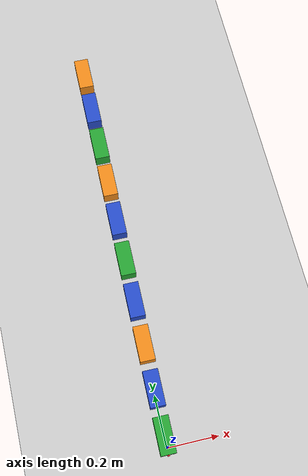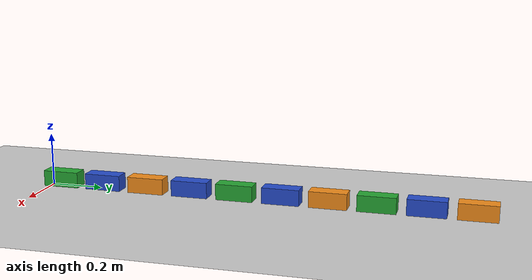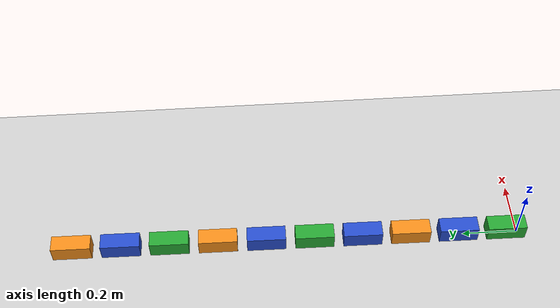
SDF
<sdf version="1.7">
 <world name="default">
  <model name="ground_plane">
   <static>1</static>
   <link name="link">
    <collision name="collision">
     <geometry><plane><normal>0 0 1</normal><size>100 100</size></plane></geometry>
     <surface>
      <contact><collide_bitmask>65535</collide_bitmask></contact>
      <friction><ode><mu>100</mu><mu2>50</mu2></ode></friction>
     </surface>
    </collision>
    <visual name="visual">
     <cast_shadows>0</cast_shadows>
     <geometry><plane><normal>0 0 1</normal><size>100 100</size></plane></geometry>
     <material>
      <script><uri>file://media/materials/scripts/gazebo.material</uri><name>Gazebo/Grey</name></script>
     </material>
    </visual>
   </link>
  </model>
  <model name="my_bot">
   <link name="base_link">
    <inertial>
     <pose>0 0.07 0.03 0 -0 0</pose>
     <mass>1</mass>
     <inertia>
      <ixx>0.00193333</ixx>
      <ixy>0</ixy>
      <ixz>0</ixz>
      <iyy>0.0006</iyy>
      <iyz>0</iyz>
      <izz>0.00193333</izz>
     </inertia>
    </inertial>
    <collision name="base_link_fixed_joint_lump__link_1_collision">
     <pose>0 0.07 0.03 0 -0 0</pose>
     <geometry><box><size>0.06 0.14 0.06</size></box></geometry>
    </collision>
    <visual name="base_link_fixed_joint_lump__link_1_visual">
     <pose>0 0.07 0.03 0 -0 0</pose>
     <geometry><box><size>0.06 0.14 0.06</size></box></geometry>
     <material>
      <script><name>Gazebo/Green</name><uri>file://media/materials/scripts/gazebo.material</uri></script>
     </material>
    </visual>
    <visual name="base_link_fixed_joint_lump__camera_link_visual_1">
     <pose>0 0 0.03 0 0 -1.5708</pose>
     <geometry><box><size>0.01 0.01 0.01</size></box></geometry>
     <material>
      <script><name>Gazebo/Red</name><uri>file://media/materials/scripts/gazebo.material</uri></script>
     </material>
    </visual>
    <sensor name="camera" type="camera">
     <visualize>1</visualize>
     <update_rate>10</update_rate>
     <camera>
      <horizontal_fov>1.089</horizontal_fov>
      <image><format>R8G8B8</format><width>640</width><height>480</height></image>
      <clip><near>0.05</near><far>8</far></clip>
     </camera>
     <plugin name="camera_controller" filename="libgazebo_ros_camera.so">
      <frame_name>camera_link_optical</frame_name>
     </plugin>
     <pose>0 0 0.03 0 0 -1.5708</pose>
    </sensor>
   </link>
   <joint name="link_1_2_joint" type="revolute">
    <pose relative_to="base_link">0 0.175 0 0 -0 0</pose>
    <parent>base_link</parent>
    <child>link_2</child>
    <axis>
     <xyz>0 0 1</xyz>
     <limit><lower>-0.785398</lower><upper>0.785398</upper><effort>1000</effort><velocity>50</velocity></limit>
     <dynamics><spring_reference>0</spring_reference><spring_stiffness>0</spring_stiffness></dynamics>
    </axis>
   </joint>
   <link name="link_2">
    <pose relative_to="link_1_2_joint">0 0 0 0 -0 0</pose>
    <inertial>
     <pose>0 0.07 0.03 0 -0 0</pose>
     <mass>1</mass>
     <inertia>
      <ixx>0.00193333</ixx>
      <ixy>0</ixy>
      <ixz>0</ixz>
      <iyy>0.0006</iyy>
      <iyz>0</iyz>
      <izz>0.00193333</izz>
     </inertia>
    </inertial>
    <collision name="link_2_collision">
     <pose>0 0.07 0.03 0 -0 0</pose>
     <geometry><box><size>0.06 0.14 0.06</size></box></geometry>
    </collision>
    <visual name="link_2_visual">
     <pose>0 0.07 0.03 0 -0 0</pose>
     <geometry><box><size>0.06 0.14 0.06</size></box></geometry>
     <material>
      <script><name>Gazebo/Blue</name><uri>file://media/materials/scripts/gazebo.material</uri></script>
     </material>
    </visual>
   </link>
   <joint name="link_2_3_joint" type="revolute">
    <pose relative_to="link_2">0 0.175 0 0 -0 0</pose>
    <parent>link_2</parent>
    <child>link_3</child>
    <axis>
     <xyz>0 0 1</xyz>
     <limit><lower>-0.785398</lower><upper>0.785398</upper><effort>1000</effort><velocity>50</velocity></limit>
     <dynamics><spring_reference>0</spring_reference><spring_stiffness>0</spring_stiffness></dynamics>
    </axis>
   </joint>
   <link name="link_3">
    <pose relative_to="link_2_3_joint">0 0 0 0 -0 0</pose>
    <inertial>
     <pose>0 0.07 0.03 0 -0 0</pose>
     <mass>1</mass>
     <inertia>
      <ixx>0.00193333</ixx>
      <ixy>0</ixy>
      <ixz>0</ixz>
      <iyy>0.0006</iyy>
      <iyz>0</iyz>
      <izz>0.00193333</izz>
     </inertia>
    </inertial>
    <collision name="link_3_collision">
     <pose>0 0.07 0.03 0 -0 0</pose>
     <geometry><box><size>0.06 0.14 0.06</size></box></geometry>
    </collision>
    <visual name="link_3_visual">
     <pose>0 0.07 0.03 0 -0 0</pose>
     <geometry><box><size>0.06 0.14 0.06</size></box></geometry>
     <material>
      <script><name>Gazebo/Orange</name><uri>file://media/materials/scripts/gazebo.material</uri></script>
     </material>
    </visual>
   </link>
   <joint name="link_3_4_joint" type="revolute">
    <pose relative_to="link_3">0 0.175 0 0 -0 0</pose>
    <parent>link_3</parent>
    <child>link_4</child>
    <axis>
     <xyz>0 0 1</xyz>
     <limit><lower>-0.785398</lower><upper>0.785398</upper><effort>1000</effort><velocity>50</velocity></limit>
     <dynamics><spring_reference>0</spring_reference><spring_stiffness>0</spring_stiffness></dynamics>
    </axis>
   </joint>
   <link name="link_4">
    <pose relative_to="link_3_4_joint">0 0 0 0 -0 0</pose>
    <inertial>
     <pose>0 0.07 0.03 0 -0 0</pose>
     <mass>1</mass>
     <inertia>
      <ixx>0.00193333</ixx>
      <ixy>0</ixy>
      <ixz>0</ixz>
      <iyy>0.0006</iyy>
      <iyz>0</iyz>
      <izz>0.00193333</izz>
     </inertia>
    </inertial>
    <collision name="link_4_collision">
     <pose>0 0.07 0.03 0 -0 0</pose>
     <geometry><box><size>0.06 0.14 0.06</size></box></geometry>
    </collision>
    <visual name="link_4_visual">
     <pose>0 0.07 0.03 0 -0 0</pose>
     <geometry><box><size>0.06 0.14 0.06</size></box></geometry>
     <material>
      <script><name>Gazebo/Blue</name><uri>file://media/materials/scripts/gazebo.material</uri></script>
     </material>
    </visual>
   </link>
   <joint name="link_4_5_joint" type="revolute">
    <pose relative_to="link_4">0 0.175 0 0 -0 0</pose>
    <parent>link_4</parent>
    <child>link_5</child>
    <axis>
     <xyz>0 0 1</xyz>
     <limit><lower>-0.785398</lower><upper>0.785398</upper><effort>1000</effort><velocity>50</velocity></limit>
     <dynamics><spring_reference>0</spring_reference><spring_stiffness>0</spring_stiffness></dynamics>
    </axis>
   </joint>
   <link name="link_5">
    <pose relative_to="link_4_5_joint">0 0 0 0 -0 0</pose>
    <inertial>
     <pose>0 0.07 0.03 0 -0 0</pose>
     <mass>1</mass>
     <inertia>
      <ixx>0.00193333</ixx>
      <ixy>0</ixy>
      <ixz>0</ixz>
      <iyy>0.0006</iyy>
      <iyz>0</iyz>
      <izz>0.00193333</izz>
     </inertia>
    </inertial>
    <collision name="link_5_collision">
     <pose>0 0.07 0.03 0 -0 0</pose>
     <geometry><box><size>0.06 0.14 0.06</size></box></geometry>
    </collision>
    <visual name="link_5_visual">
     <pose>0 0.07 0.03 0 -0 0</pose>
     <geometry><box><size>0.06 0.14 0.06</size></box></geometry>
     <material>
      <script><name>Gazebo/Green</name><uri>file://media/materials/scripts/gazebo.material</uri></script>
     </material>
    </visual>
   </link>
   <joint name="link_5_6_joint" type="revolute">
    <pose relative_to="link_5">0 0.175 0 0 -0 0</pose>
    <parent>link_5</parent>
    <child>link_6</child>
    <axis>
     <xyz>0 0 1</xyz>
     <limit><lower>-0.785398</lower><upper>0.785398</upper><effort>1000</effort><velocity>50</velocity></limit>
     <dynamics><spring_reference>0</spring_reference><spring_stiffness>0</spring_stiffness></dynamics>
    </axis>
   </joint>
   <link name="link_6">
    <pose relative_to="link_5_6_joint">0 0 0 0 -0 0</pose>
    <inertial>
     <pose>0 0.07 0.03 0 -0 0</pose>
     <mass>1</mass>
     <inertia>
      <ixx>0.00193333</ixx>
      <ixy>0</ixy>
      <ixz>0</ixz>
      <iyy>0.0006</iyy>
      <iyz>0</iyz>
      <izz>0.00193333</izz>
     </inertia>
    </inertial>
    <collision name="link_6_collision">
     <pose>0 0.07 0.03 0 -0 0</pose>
     <geometry><box><size>0.06 0.14 0.06</size></box></geometry>
    </collision>
    <visual name="link_6_visual">
     <pose>0 0.07 0.03 0 -0 0</pose>
     <geometry><box><size>0.06 0.14 0.06</size></box></geometry>
     <material>
      <script><name>Gazebo/Blue</name><uri>file://media/materials/scripts/gazebo.material</uri></script>
     </material>
    </visual>
   </link>
   <joint name="link_6_7_joint" type="revolute">
    <pose relative_to="link_6">0 0.175 0 0 -0 0</pose>
    <parent>link_6</parent>
    <child>link_7</child>
    <axis>
     <xyz>0 0 1</xyz>
     <limit><lower>-0.785398</lower><upper>0.785398</upper><effort>1000</effort><velocity>50</velocity></limit>
     <dynamics><spring_reference>0</spring_reference><spring_stiffness>0</spring_stiffness></dynamics>
    </axis>
   </joint>
   <link name="link_7">
    <pose relative_to="link_6_7_joint">0 0 0 0 -0 0</pose>
    <inertial>
     <pose>0 0.07 0.03 0 -0 0</pose>
     <mass>1</mass>
     <inertia>
      <ixx>0.00193333</ixx>
      <ixy>0</ixy>
      <ixz>0</ixz>
      <iyy>0.0006</iyy>
      <iyz>0</iyz>
      <izz>0.00193333</izz>
     </inertia>
    </inertial>
    <collision name="link_7_collision">
     <pose>0 0.07 0.03 0 -0 0</pose>
     <geometry><box><size>0.06 0.14 0.06</size></box></geometry>
    </collision>
    <visual name="link_7_visual">
     <pose>0 0.07 0.03 0 -0 0</pose>
     <geometry><box><size>0.06 0.14 0.06</size></box></geometry>
     <material>
      <script><name>Gazebo/Orange</name><uri>file://media/materials/scripts/gazebo.material</uri></script>
     </material>
    </visual>
   </link>
   <joint name="link_7_8_joint" type="revolute">
    <pose relative_to="link_7">0 0.175 0 0 -0 0</pose>
    <parent>link_7</parent>
    <child>link_8</child>
    <axis>
     <xyz>0 0 1</xyz>
     <limit><lower>-0.785398</lower><upper>0.785398</upper><effort>1000</effort><velocity>50</velocity></limit>
     <dynamics><spring_reference>0</spring_reference><spring_stiffness>0</spring_stiffness></dynamics>
    </axis>
   </joint>
   <link name="link_8">
    <pose relative_to="link_7_8_joint">0 0 0 0 -0 0</pose>
    <inertial>
     <pose>0 0.07 0.03 0 -0 0</pose>
     <mass>1</mass>
     <inertia>
      <ixx>0.00193333</ixx>
      <ixy>0</ixy>
      <ixz>0</ixz>
      <iyy>0.0006</iyy>
      <iyz>0</iyz>
      <izz>0.00193333</izz>
     </inertia>
    </inertial>
    <collision name="link_8_collision">
     <pose>0 0.07 0.03 0 -0 0</pose>
     <geometry><box><size>0.06 0.14 0.06</size></box></geometry>
    </collision>
    <visual name="link_8_visual">
     <pose>0 0.07 0.03 0 -0 0</pose>
     <geometry><box><size>0.06 0.14 0.06</size></box></geometry>
     <material>
      <script><name>Gazebo/Green</name><uri>file://media/materials/scripts/gazebo.material</uri></script>
     </material>
    </visual>
   </link>
   <joint name="link_8_9_joint" type="revolute">
    <pose relative_to="link_8">0 0.175 0 0 -0 0</pose>
    <parent>link_8</parent>
    <child>link_9</child>
    <axis>
     <xyz>0 0 1</xyz>
     <limit><lower>-0.785398</lower><upper>0.785398</upper><effort>1000</effort><velocity>50</velocity></limit>
     <dynamics><spring_reference>0</spring_reference><spring_stiffness>0</spring_stiffness></dynamics>
    </axis>
   </joint>
   <link name="link_9">
    <pose relative_to="link_8_9_joint">0 0 0 0 -0 0</pose>
    <inertial>
     <pose>0 0.07 0.03 0 -0 0</pose>
     <mass>1</mass>
     <inertia>
      <ixx>0.00193333</ixx>
      <ixy>0</ixy>
      <ixz>0</ixz>
      <iyy>0.0006</iyy>
      <iyz>0</iyz>
      <izz>0.00193333</izz>
     </inertia>
    </inertial>
    <collision name="link_9_collision">
     <pose>0 0.07 0.03 0 -0 0</pose>
     <geometry><box><size>0.06 0.14 0.06</size></box></geometry>
    </collision>
    <visual name="link_9_visual">
     <pose>0 0.07 0.03 0 -0 0</pose>
     <geometry><box><size>0.06 0.14 0.06</size></box></geometry>
     <material>
      <script><name>Gazebo/Blue</name><uri>file://media/materials/scripts/gazebo.material</uri></script>
     </material>
    </visual>
   </link>
   <joint name="link_9_10_joint" type="revolute">
    <pose relative_to="link_9">0 0.175 0 0 -0 0</pose>
    <parent>link_9</parent>
    <child>link_10</child>
    <axis>
     <xyz>0 0 1</xyz>
     <limit><lower>-0.785398</lower><upper>0.785398</upper><effort>1000</effort><velocity>50</velocity></limit>
     <dynamics><spring_reference>0</spring_reference><spring_stiffness>0</spring_stiffness></dynamics>
    </axis>
   </joint>
   <link name="link_10">
    <pose relative_to="link_9_10_joint">0 0 0 0 -0 0</pose>
    <inertial>
     <pose>0 0.07 0.03 0 -0 0</pose>
     <mass>1</mass>
     <inertia>
      <ixx>0.00193333</ixx>
      <ixy>0</ixy>
      <ixz>0</ixz>
      <iyy>0.0006</iyy>
      <iyz>0</iyz>
      <izz>0.00193333</izz>
     </inertia>
    </inertial>
    <collision name="link_10_collision">
     <pose>0 0.07 0.03 0 -0 0</pose>
     <geometry><box><size>0.06 0.14 0.06</size></box></geometry>
    </collision>
    <visual name="link_10_visual">
     <pose>0 0.07 0.03 0 -0 0</pose>
     <geometry><box><size>0.06 0.14 0.06</size></box></geometry>
     <material>
      <script><name>Gazebo/Orange</name><uri>file://media/materials/scripts/gazebo.material</uri></script>
     </material>
    </visual>
   </link>
   <static>0</static>
   <plugin name="gazebo_ros_planar_move" filename="libgazebo_ros_planar_move.so">
    <update_rate>100</update_rate>
    <publish_rate>10</publish_rate>
    <publish_odom>1</publish_odom>
    <publish_odom_tf>1</publish_odom_tf>
    <odometry_frame>odom</odometry_frame>
    <robot_base_frame>base_link</robot_base_frame>
   </plugin>
   <plugin name="gazebo_ros2_control" filename="libgazebo_ros2_control.so">
    <parameters>/home/mohit/GITHUBRepos/snake-robot-sim/install/snake_bot/share/snake_bot/config/controllers.yaml</parameters>
   </plugin>
   <plugin name="ft_sensor" filename="libgazebo_ros_ft_sensor.so">
    <updateRate>100.0</updateRate>
    <remapping>wrench:=joint_1</remapping>
    <joint_name>link_1_2_joint</joint_name>
    <gaussian_noise>0.01</gaussian_noise>
    <update_rate>1</update_rate>
   </plugin>
   <pose>-0.00067 -0.024849 0 -0 -0 -0.01054</pose>
  </model>
 </world>
</sdf>
